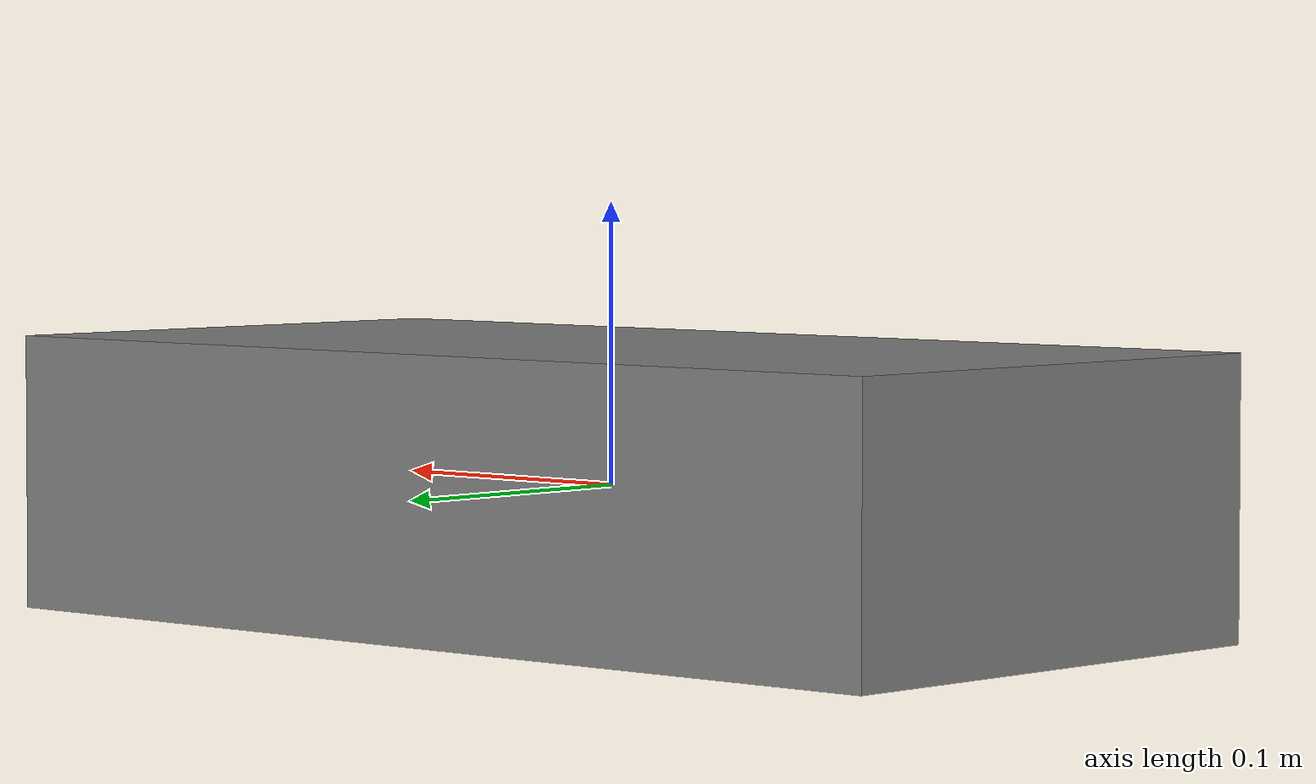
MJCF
<mujoco model='puck'>

    <compiler inertiafromgeom='true'/>

    <default>
		<joint armature="0" damping="1"/>
		<geom contype="0" friction="1 0.1 0.1" />
		<tendon/>
		<motor ctrlrange="-10 10"/>
	</default>

	<option gravity="0 0 -9.81" timestep="0.05" />

    <size nstack="3000"/>

    <custom>
		<!-- brax custom params -->
        <numeric data="10000" name="constraint_stiffness"/>
		<numeric data="10000" name="constraint_limit_stiffness"/>
		<numeric data="0" name="spring_mass_scale"/>
		<numeric data="1" name="spring_inertia_scale"/>
	</custom>

    <worldbody>
        <body name='cart' pos='0 0 0'>
            <joint name='slider' type='slide' limited='true' pos='0 0 0' axis='1 0 0' range='-2.5 2.5' damping='0.05'/>
            <geom name='cart_geom' type='box' pos='0 0 0' size='0.2 0.1 0.05'/>
        </body>
    </worldbody>

    <actuator>
        <motor name='slide' joint='slider' gear='100 0 0 0 0 0' ctrllimited='true' ctrlrange='-10 10'/>
    </actuator>

</mujoco>
